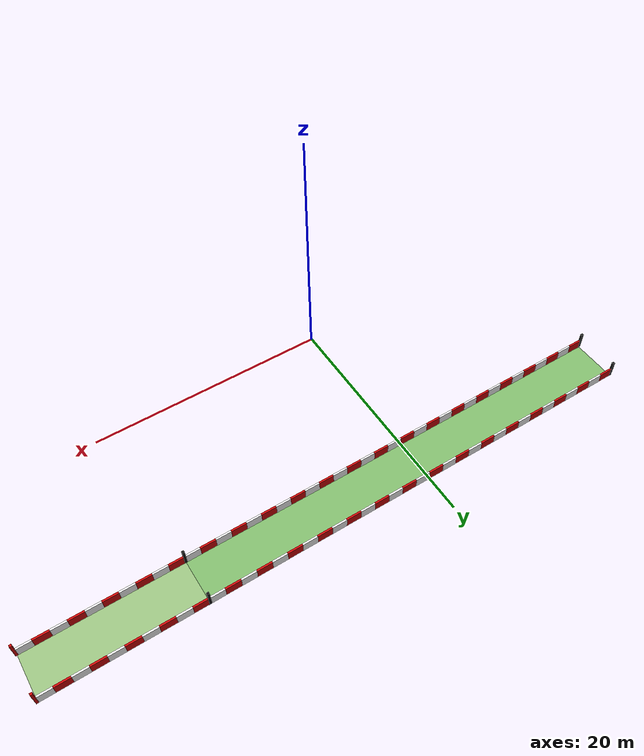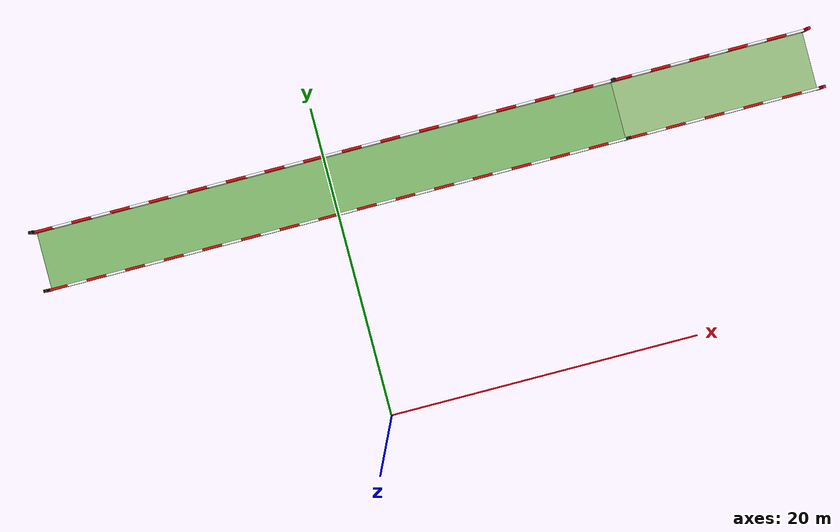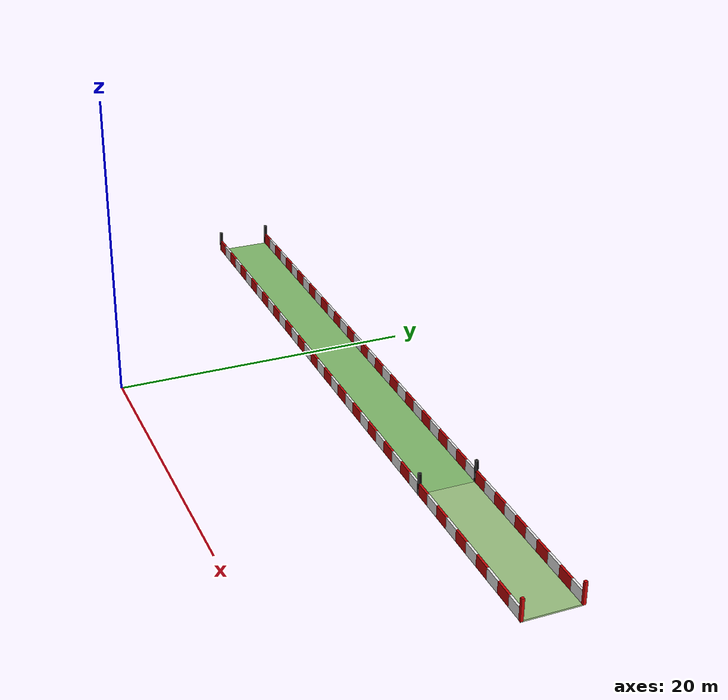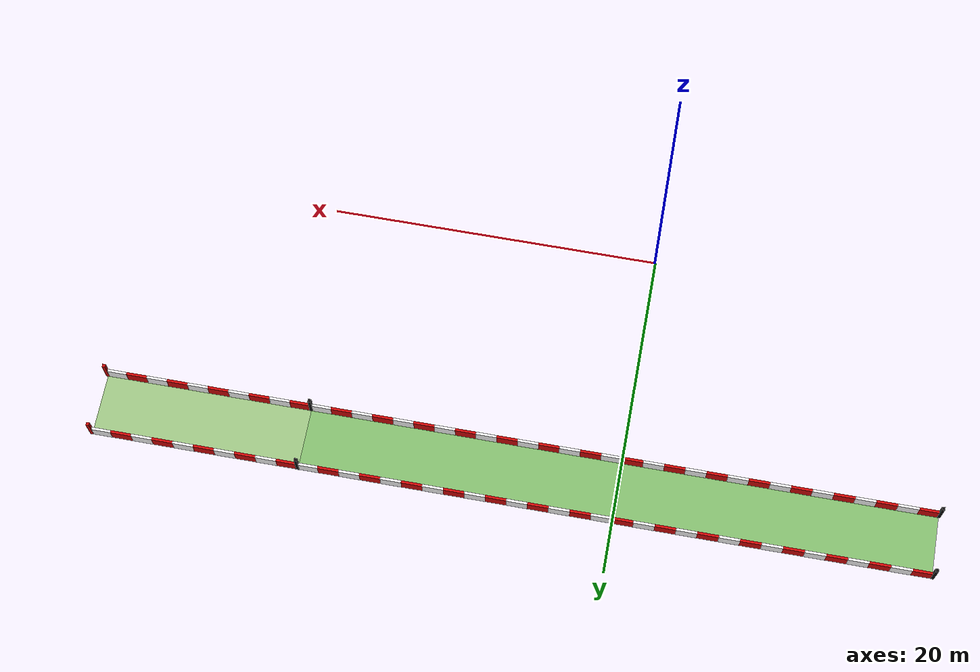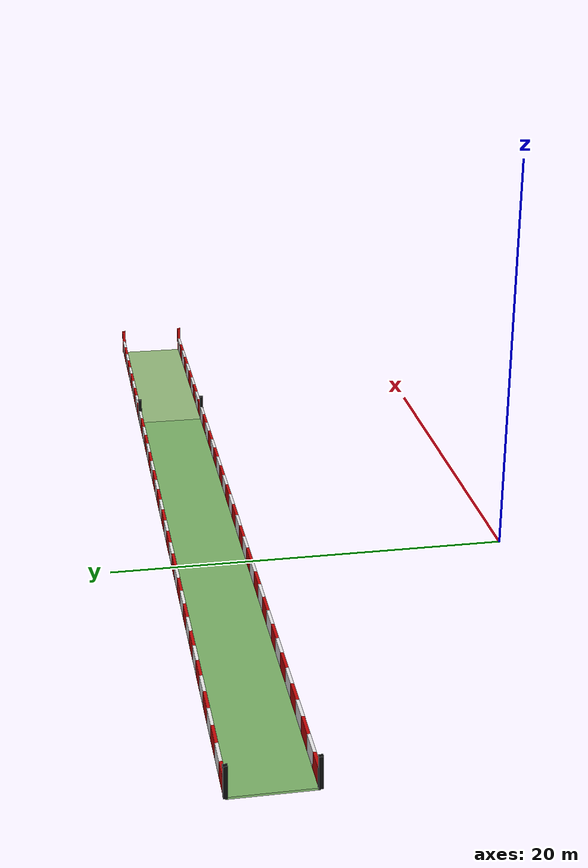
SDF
<sdf version="1.6">
 <world name="evrenos_teknofest_2026">
  <include><uri>model://sun</uri></include>
  <model name="acceleration_course">
   <static>true</static>
   <link name="accel_30m">
    <pose>0.000000 15.000000 -0.050000 0.000000 0.000000 0.000000</pose>
    <collision name="accel_30m_collision">
     <geometry><box><size>37.500000 3.750000 0.100000</size></box></geometry>
    </collision>
    <visual name="accel_30m_visual">
     <geometry><box><size>37.500000 3.750000 0.100000</size></box></geometry>
     <material><ambient>0.5 0.72 0.42 1</ambient><diffuse>0.5 0.72 0.42 1</diffuse></material>
    </visual>
   </link>
   <link name="accel_stop_10m">
    <pose>25.000000 15.000000 -0.050000 0.000000 0.000000 0.000000</pose>
    <collision name="accel_stop_10m_collision">
     <geometry><box><size>12.500000 3.750000 0.100000</size></box></geometry>
    </collision>
    <visual name="accel_stop_10m_visual">
     <geometry><box><size>12.500000 3.750000 0.100000</size></box></geometry>
     <material><ambient>0.6 0.75 0.5 1</ambient><diffuse>0.6 0.75 0.5 1</diffuse></material>
    </visual>
   </link>
   <link name="accel_bar_-1_0">
    <pose>-18.125000 13.125000 0.400000 0.000000 0.000000 0.000000</pose>
    <collision name="accel_bar_-1_0_collision">
     <geometry><box><size>1.250000 0.150000 0.800000</size></box></geometry>
    </collision>
    <visual name="accel_bar_-1_0_visual">
     <geometry><box><size>1.250000 0.150000 0.800000</size></box></geometry>
     <material><ambient>0.8 0.03 0.03 1</ambient><diffuse>0.8 0.03 0.03 1</diffuse></material>
    </visual>
   </link>
   <link name="accel_bar_-1_1">
    <pose>-16.875000 13.125000 0.400000 0.000000 0.000000 0.000000</pose>
    <collision name="accel_bar_-1_1_collision">
     <geometry><box><size>1.250000 0.150000 0.800000</size></box></geometry>
    </collision>
    <visual name="accel_bar_-1_1_visual">
     <geometry><box><size>1.250000 0.150000 0.800000</size></box></geometry>
     <material><ambient>0.95 0.95 0.95 1</ambient><diffuse>0.95 0.95 0.95 1</diffuse></material>
    </visual>
   </link>
   <link name="accel_bar_-1_2">
    <pose>-15.625000 13.125000 0.400000 0.000000 0.000000 0.000000</pose>
    <collision name="accel_bar_-1_2_collision">
     <geometry><box><size>1.250000 0.150000 0.800000</size></box></geometry>
    </collision>
    <visual name="accel_bar_-1_2_visual">
     <geometry><box><size>1.250000 0.150000 0.800000</size></box></geometry>
     <material><ambient>0.8 0.03 0.03 1</ambient><diffuse>0.8 0.03 0.03 1</diffuse></material>
    </visual>
   </link>
   <link name="accel_bar_-1_3">
    <pose>-14.375000 13.125000 0.400000 0.000000 0.000000 0.000000</pose>
    <collision name="accel_bar_-1_3_collision">
     <geometry><box><size>1.250000 0.150000 0.800000</size></box></geometry>
    </collision>
    <visual name="accel_bar_-1_3_visual">
     <geometry><box><size>1.250000 0.150000 0.800000</size></box></geometry>
     <material><ambient>0.95 0.95 0.95 1</ambient><diffuse>0.95 0.95 0.95 1</diffuse></material>
    </visual>
   </link>
   <link name="accel_bar_-1_4">
    <pose>-13.125000 13.125000 0.400000 0.000000 0.000000 0.000000</pose>
    <collision name="accel_bar_-1_4_collision">
     <geometry><box><size>1.250000 0.150000 0.800000</size></box></geometry>
    </collision>
    <visual name="accel_bar_-1_4_visual">
     <geometry><box><size>1.250000 0.150000 0.800000</size></box></geometry>
     <material><ambient>0.8 0.03 0.03 1</ambient><diffuse>0.8 0.03 0.03 1</diffuse></material>
    </visual>
   </link>
   <link name="accel_bar_-1_5">
    <pose>-11.875000 13.125000 0.400000 0.000000 0.000000 0.000000</pose>
    <collision name="accel_bar_-1_5_collision">
     <geometry><box><size>1.250000 0.150000 0.800000</size></box></geometry>
    </collision>
    <visual name="accel_bar_-1_5_visual">
     <geometry><box><size>1.250000 0.150000 0.800000</size></box></geometry>
     <material><ambient>0.95 0.95 0.95 1</ambient><diffuse>0.95 0.95 0.95 1</diffuse></material>
    </visual>
   </link>
   <link name="accel_bar_-1_6">
    <pose>-10.625000 13.125000 0.400000 0.000000 0.000000 0.000000</pose>
    <collision name="accel_bar_-1_6_collision">
     <geometry><box><size>1.250000 0.150000 0.800000</size></box></geometry>
    </collision>
    <visual name="accel_bar_-1_6_visual">
     <geometry><box><size>1.250000 0.150000 0.800000</size></box></geometry>
     <material><ambient>0.8 0.03 0.03 1</ambient><diffuse>0.8 0.03 0.03 1</diffuse></material>
    </visual>
   </link>
   <link name="accel_bar_-1_7">
    <pose>-9.375000 13.125000 0.400000 0.000000 0.000000 0.000000</pose>
    <collision name="accel_bar_-1_7_collision">
     <geometry><box><size>1.250000 0.150000 0.800000</size></box></geometry>
    </collision>
    <visual name="accel_bar_-1_7_visual">
     <geometry><box><size>1.250000 0.150000 0.800000</size></box></geometry>
     <material><ambient>0.95 0.95 0.95 1</ambient><diffuse>0.95 0.95 0.95 1</diffuse></material>
    </visual>
   </link>
   <link name="accel_bar_-1_8">
    <pose>-8.125000 13.125000 0.400000 0.000000 0.000000 0.000000</pose>
    <collision name="accel_bar_-1_8_collision">
     <geometry><box><size>1.250000 0.150000 0.800000</size></box></geometry>
    </collision>
    <visual name="accel_bar_-1_8_visual">
     <geometry><box><size>1.250000 0.150000 0.800000</size></box></geometry>
     <material><ambient>0.8 0.03 0.03 1</ambient><diffuse>0.8 0.03 0.03 1</diffuse></material>
    </visual>
   </link>
   <link name="accel_bar_-1_9">
    <pose>-6.875000 13.125000 0.400000 0.000000 0.000000 0.000000</pose>
    <collision name="accel_bar_-1_9_collision">
     <geometry><box><size>1.250000 0.150000 0.800000</size></box></geometry>
    </collision>
    <visual name="accel_bar_-1_9_visual">
     <geometry><box><size>1.250000 0.150000 0.800000</size></box></geometry>
     <material><ambient>0.95 0.95 0.95 1</ambient><diffuse>0.95 0.95 0.95 1</diffuse></material>
    </visual>
   </link>
   <link name="accel_bar_-1_10">
    <pose>-5.625000 13.125000 0.400000 0.000000 0.000000 0.000000</pose>
    <collision name="accel_bar_-1_10_collision">
     <geometry><box><size>1.250000 0.150000 0.800000</size></box></geometry>
    </collision>
    <visual name="accel_bar_-1_10_visual">
     <geometry><box><size>1.250000 0.150000 0.800000</size></box></geometry>
     <material><ambient>0.8 0.03 0.03 1</ambient><diffuse>0.8 0.03 0.03 1</diffuse></material>
    </visual>
   </link>
   <link name="accel_bar_-1_11">
    <pose>-4.375000 13.125000 0.400000 0.000000 0.000000 0.000000</pose>
    <collision name="accel_bar_-1_11_collision">
     <geometry><box><size>1.250000 0.150000 0.800000</size></box></geometry>
    </collision>
    <visual name="accel_bar_-1_11_visual">
     <geometry><box><size>1.250000 0.150000 0.800000</size></box></geometry>
     <material><ambient>0.95 0.95 0.95 1</ambient><diffuse>0.95 0.95 0.95 1</diffuse></material>
    </visual>
   </link>
   <link name="accel_bar_-1_12">
    <pose>-3.125000 13.125000 0.400000 0.000000 0.000000 0.000000</pose>
    <collision name="accel_bar_-1_12_collision">
     <geometry><box><size>1.250000 0.150000 0.800000</size></box></geometry>
    </collision>
    <visual name="accel_bar_-1_12_visual">
     <geometry><box><size>1.250000 0.150000 0.800000</size></box></geometry>
     <material><ambient>0.8 0.03 0.03 1</ambient><diffuse>0.8 0.03 0.03 1</diffuse></material>
    </visual>
   </link>
   <link name="accel_bar_-1_13">
    <pose>-1.875000 13.125000 0.400000 0.000000 0.000000 0.000000</pose>
    <collision name="accel_bar_-1_13_collision">
     <geometry><box><size>1.250000 0.150000 0.800000</size></box></geometry>
    </collision>
    <visual name="accel_bar_-1_13_visual">
     <geometry><box><size>1.250000 0.150000 0.800000</size></box></geometry>
     <material><ambient>0.95 0.95 0.95 1</ambient><diffuse>0.95 0.95 0.95 1</diffuse></material>
    </visual>
   </link>
   <link name="accel_bar_-1_14">
    <pose>-0.625000 13.125000 0.400000 0.000000 0.000000 0.000000</pose>
    <collision name="accel_bar_-1_14_collision">
     <geometry><box><size>1.250000 0.150000 0.800000</size></box></geometry>
    </collision>
    <visual name="accel_bar_-1_14_visual">
     <geometry><box><size>1.250000 0.150000 0.800000</size></box></geometry>
     <material><ambient>0.8 0.03 0.03 1</ambient><diffuse>0.8 0.03 0.03 1</diffuse></material>
    </visual>
   </link>
   <link name="accel_bar_-1_15">
    <pose>0.625000 13.125000 0.400000 0.000000 0.000000 0.000000</pose>
    <collision name="accel_bar_-1_15_collision">
     <geometry><box><size>1.250000 0.150000 0.800000</size></box></geometry>
    </collision>
    <visual name="accel_bar_-1_15_visual">
     <geometry><box><size>1.250000 0.150000 0.800000</size></box></geometry>
     <material><ambient>0.95 0.95 0.95 1</ambient><diffuse>0.95 0.95 0.95 1</diffuse></material>
    </visual>
   </link>
   <link name="accel_bar_-1_16">
    <pose>1.875000 13.125000 0.400000 0.000000 0.000000 0.000000</pose>
    <collision name="accel_bar_-1_16_collision">
     <geometry><box><size>1.250000 0.150000 0.800000</size></box></geometry>
    </collision>
    <visual name="accel_bar_-1_16_visual">
     <geometry><box><size>1.250000 0.150000 0.800000</size></box></geometry>
     <material><ambient>0.8 0.03 0.03 1</ambient><diffuse>0.8 0.03 0.03 1</diffuse></material>
    </visual>
   </link>
   <link name="accel_bar_-1_17">
    <pose>3.125000 13.125000 0.400000 0.000000 0.000000 0.000000</pose>
    <collision name="accel_bar_-1_17_collision">
     <geometry><box><size>1.250000 0.150000 0.800000</size></box></geometry>
    </collision>
    <visual name="accel_bar_-1_17_visual">
     <geometry><box><size>1.250000 0.150000 0.800000</size></box></geometry>
     <material><ambient>0.95 0.95 0.95 1</ambient><diffuse>0.95 0.95 0.95 1</diffuse></material>
    </visual>
   </link>
   <link name="accel_bar_-1_18">
    <pose>4.375000 13.125000 0.400000 0.000000 0.000000 0.000000</pose>
    <collision name="accel_bar_-1_18_collision">
     <geometry><box><size>1.250000 0.150000 0.800000</size></box></geometry>
    </collision>
    <visual name="accel_bar_-1_18_visual">
     <geometry><box><size>1.250000 0.150000 0.800000</size></box></geometry>
     <material><ambient>0.8 0.03 0.03 1</ambient><diffuse>0.8 0.03 0.03 1</diffuse></material>
    </visual>
   </link>
   <link name="accel_bar_-1_19">
    <pose>5.625000 13.125000 0.400000 0.000000 0.000000 0.000000</pose>
    <collision name="accel_bar_-1_19_collision">
     <geometry><box><size>1.250000 0.150000 0.800000</size></box></geometry>
    </collision>
    <visual name="accel_bar_-1_19_visual">
     <geometry><box><size>1.250000 0.150000 0.800000</size></box></geometry>
     <material><ambient>0.95 0.95 0.95 1</ambient><diffuse>0.95 0.95 0.95 1</diffuse></material>
    </visual>
   </link>
   <link name="accel_bar_-1_20">
    <pose>6.875000 13.125000 0.400000 0.000000 0.000000 0.000000</pose>
    <collision name="accel_bar_-1_20_collision">
     <geometry><box><size>1.250000 0.150000 0.800000</size></box></geometry>
    </collision>
    <visual name="accel_bar_-1_20_visual">
     <geometry><box><size>1.250000 0.150000 0.800000</size></box></geometry>
     <material><ambient>0.8 0.03 0.03 1</ambient><diffuse>0.8 0.03 0.03 1</diffuse></material>
    </visual>
   </link>
   <link name="accel_bar_-1_21">
    <pose>8.125000 13.125000 0.400000 0.000000 0.000000 0.000000</pose>
    <collision name="accel_bar_-1_21_collision">
     <geometry><box><size>1.250000 0.150000 0.800000</size></box></geometry>
    </collision>
    <visual name="accel_bar_-1_21_visual">
     <geometry><box><size>1.250000 0.150000 0.800000</size></box></geometry>
     <material><ambient>0.95 0.95 0.95 1</ambient><diffuse>0.95 0.95 0.95 1</diffuse></material>
    </visual>
   </link>
   <link name="accel_bar_-1_22">
    <pose>9.375000 13.125000 0.400000 0.000000 0.000000 0.000000</pose>
    <collision name="accel_bar_-1_22_collision">
     <geometry><box><size>1.250000 0.150000 0.800000</size></box></geometry>
    </collision>
    <visual name="accel_bar_-1_22_visual">
     <geometry><box><size>1.250000 0.150000 0.800000</size></box></geometry>
     <material><ambient>0.8 0.03 0.03 1</ambient><diffuse>0.8 0.03 0.03 1</diffuse></material>
    </visual>
   </link>
   <link name="accel_bar_-1_23">
    <pose>10.625000 13.125000 0.400000 0.000000 0.000000 0.000000</pose>
    <collision name="accel_bar_-1_23_collision">
     <geometry><box><size>1.250000 0.150000 0.800000</size></box></geometry>
    </collision>
    <visual name="accel_bar_-1_23_visual">
     <geometry><box><size>1.250000 0.150000 0.800000</size></box></geometry>
     <material><ambient>0.95 0.95 0.95 1</ambient><diffuse>0.95 0.95 0.95 1</diffuse></material>
    </visual>
   </link>
   <link name="accel_bar_-1_24">
    <pose>11.875000 13.125000 0.400000 0.000000 0.000000 0.000000</pose>
    <collision name="accel_bar_-1_24_collision">
     <geometry><box><size>1.250000 0.150000 0.800000</size></box></geometry>
    </collision>
    <visual name="accel_bar_-1_24_visual">
     <geometry><box><size>1.250000 0.150000 0.800000</size></box></geometry>
     <material><ambient>0.8 0.03 0.03 1</ambient><diffuse>0.8 0.03 0.03 1</diffuse></material>
    </visual>
   </link>
   <link name="accel_bar_-1_25">
    <pose>13.125000 13.125000 0.400000 0.000000 0.000000 0.000000</pose>
    <collision name="accel_bar_-1_25_collision">
     <geometry><box><size>1.250000 0.150000 0.800000</size></box></geometry>
    </collision>
    <visual name="accel_bar_-1_25_visual">
     <geometry><box><size>1.250000 0.150000 0.800000</size></box></geometry>
     <material><ambient>0.95 0.95 0.95 1</ambient><diffuse>0.95 0.95 0.95 1</diffuse></material>
    </visual>
   </link>
   <link name="accel_bar_-1_26">
    <pose>14.375000 13.125000 0.400000 0.000000 0.000000 0.000000</pose>
    <collision name="accel_bar_-1_26_collision">
     <geometry><box><size>1.250000 0.150000 0.800000</size></box></geometry>
    </collision>
    <visual name="accel_bar_-1_26_visual">
     <geometry><box><size>1.250000 0.150000 0.800000</size></box></geometry>
     <material><ambient>0.8 0.03 0.03 1</ambient><diffuse>0.8 0.03 0.03 1</diffuse></material>
    </visual>
   </link>
   <link name="accel_bar_-1_27">
    <pose>15.625000 13.125000 0.400000 0.000000 0.000000 0.000000</pose>
    <collision name="accel_bar_-1_27_collision">
     <geometry><box><size>1.250000 0.150000 0.800000</size></box></geometry>
    </collision>
    <visual name="accel_bar_-1_27_visual">
     <geometry><box><size>1.250000 0.150000 0.800000</size></box></geometry>
     <material><ambient>0.95 0.95 0.95 1</ambient><diffuse>0.95 0.95 0.95 1</diffuse></material>
    </visual>
   </link>
   <link name="accel_bar_-1_28">
    <pose>16.875000 13.125000 0.400000 0.000000 0.000000 0.000000</pose>
    <collision name="accel_bar_-1_28_collision">
     <geometry><box><size>1.250000 0.150000 0.800000</size></box></geometry>
    </collision>
    <visual name="accel_bar_-1_28_visual">
     <geometry><box><size>1.250000 0.150000 0.800000</size></box></geometry>
     <material><ambient>0.8 0.03 0.03 1</ambient><diffuse>0.8 0.03 0.03 1</diffuse></material>
    </visual>
   </link>
   <link name="accel_bar_-1_29">
    <pose>18.125000 13.125000 0.400000 0.000000 0.000000 0.000000</pose>
    <collision name="accel_bar_-1_29_collision">
     <geometry><box><size>1.250000 0.150000 0.800000</size></box></geometry>
    </collision>
    <visual name="accel_bar_-1_29_visual">
     <geometry><box><size>1.250000 0.150000 0.800000</size></box></geometry>
     <material><ambient>0.95 0.95 0.95 1</ambient><diffuse>0.95 0.95 0.95 1</diffuse></material>
    </visual>
   </link>
   <link name="accel_bar_-1_30">
    <pose>19.375000 13.125000 0.400000 0.000000 0.000000 0.000000</pose>
    <collision name="accel_bar_-1_30_collision">
     <geometry><box><size>1.250000 0.150000 0.800000</size></box></geometry>
    </collision>
    <visual name="accel_bar_-1_30_visual">
     <geometry><box><size>1.250000 0.150000 0.800000</size></box></geometry>
     <material><ambient>0.8 0.03 0.03 1</ambient><diffuse>0.8 0.03 0.03 1</diffuse></material>
    </visual>
   </link>
   <link name="accel_bar_-1_31">
    <pose>20.625000 13.125000 0.400000 0.000000 0.000000 0.000000</pose>
    <collision name="accel_bar_-1_31_collision">
     <geometry><box><size>1.250000 0.150000 0.800000</size></box></geometry>
    </collision>
    <visual name="accel_bar_-1_31_visual">
     <geometry><box><size>1.250000 0.150000 0.800000</size></box></geometry>
     <material><ambient>0.95 0.95 0.95 1</ambient><diffuse>0.95 0.95 0.95 1</diffuse></material>
    </visual>
   </link>
   <link name="accel_bar_-1_32">
    <pose>21.875000 13.125000 0.400000 0.000000 0.000000 0.000000</pose>
    <collision name="accel_bar_-1_32_collision">
     <geometry><box><size>1.250000 0.150000 0.800000</size></box></geometry>
    </collision>
    <visual name="accel_bar_-1_32_visual">
     <geometry><box><size>1.250000 0.150000 0.800000</size></box></geometry>
     <material><ambient>0.8 0.03 0.03 1</ambient><diffuse>0.8 0.03 0.03 1</diffuse></material>
    </visual>
   </link>
   <link name="accel_bar_-1_33">
    <pose>23.125000 13.125000 0.400000 0.000000 0.000000 0.000000</pose>
    <collision name="accel_bar_-1_33_collision">
     <geometry><box><size>1.250000 0.150000 0.800000</size></box></geometry>
    </collision>
    <visual name="accel_bar_-1_33_visual">
     <geometry><box><size>1.250000 0.150000 0.800000</size></box></geometry>
     <material><ambient>0.95 0.95 0.95 1</ambient><diffuse>0.95 0.95 0.95 1</diffuse></material>
    </visual>
   </link>
   <link name="accel_bar_-1_34">
    <pose>24.375000 13.125000 0.400000 0.000000 0.000000 0.000000</pose>
    <collision name="accel_bar_-1_34_collision">
     <geometry><box><size>1.250000 0.150000 0.800000</size></box></geometry>
    </collision>
    <visual name="accel_bar_-1_34_visual">
     <geometry><box><size>1.250000 0.150000 0.800000</size></box></geometry>
     <material><ambient>0.8 0.03 0.03 1</ambient><diffuse>0.8 0.03 0.03 1</diffuse></material>
    </visual>
   </link>
   <link name="accel_bar_-1_35">
    <pose>25.625000 13.125000 0.400000 0.000000 0.000000 0.000000</pose>
    <collision name="accel_bar_-1_35_collision">
     <geometry><box><size>1.250000 0.150000 0.800000</size></box></geometry>
    </collision>
    <visual name="accel_bar_-1_35_visual">
     <geometry><box><size>1.250000 0.150000 0.800000</size></box></geometry>
     <material><ambient>0.95 0.95 0.95 1</ambient><diffuse>0.95 0.95 0.95 1</diffuse></material>
    </visual>
   </link>
   <link name="accel_bar_-1_36">
    <pose>26.875000 13.125000 0.400000 0.000000 0.000000 0.000000</pose>
    <collision name="accel_bar_-1_36_collision">
     <geometry><box><size>1.250000 0.150000 0.800000</size></box></geometry>
    </collision>
    <visual name="accel_bar_-1_36_visual">
     <geometry><box><size>1.250000 0.150000 0.800000</size></box></geometry>
     <material><ambient>0.8 0.03 0.03 1</ambient><diffuse>0.8 0.03 0.03 1</diffuse></material>
    </visual>
   </link>
   <link name="accel_bar_-1_37">
    <pose>28.125000 13.125000 0.400000 0.000000 0.000000 0.000000</pose>
    <collision name="accel_bar_-1_37_collision">
     <geometry><box><size>1.250000 0.150000 0.800000</size></box></geometry>
    </collision>
    <visual name="accel_bar_-1_37_visual">
     <geometry><box><size>1.250000 0.150000 0.800000</size></box></geometry>
     <material><ambient>0.95 0.95 0.95 1</ambient><diffuse>0.95 0.95 0.95 1</diffuse></material>
    </visual>
   </link>
   <link name="accel_bar_-1_38">
    <pose>29.375000 13.125000 0.400000 0.000000 0.000000 0.000000</pose>
    <collision name="accel_bar_-1_38_collision">
     <geometry><box><size>1.250000 0.150000 0.800000</size></box></geometry>
    </collision>
    <visual name="accel_bar_-1_38_visual">
     <geometry><box><size>1.250000 0.150000 0.800000</size></box></geometry>
     <material><ambient>0.8 0.03 0.03 1</ambient><diffuse>0.8 0.03 0.03 1</diffuse></material>
    </visual>
   </link>
   <link name="accel_bar_-1_39">
    <pose>30.625000 13.125000 0.400000 0.000000 0.000000 0.000000</pose>
    <collision name="accel_bar_-1_39_collision">
     <geometry><box><size>1.250000 0.150000 0.800000</size></box></geometry>
    </collision>
    <visual name="accel_bar_-1_39_visual">
     <geometry><box><size>1.250000 0.150000 0.800000</size></box></geometry>
     <material><ambient>0.95 0.95 0.95 1</ambient><diffuse>0.95 0.95 0.95 1</diffuse></material>
    </visual>
   </link>
   <link name="accel_bar_1_0">
    <pose>-18.125000 16.875000 0.400000 0.000000 0.000000 0.000000</pose>
    <collision name="accel_bar_1_0_collision">
     <geometry><box><size>1.250000 0.150000 0.800000</size></box></geometry>
    </collision>
    <visual name="accel_bar_1_0_visual">
     <geometry><box><size>1.250000 0.150000 0.800000</size></box></geometry>
     <material><ambient>0.8 0.03 0.03 1</ambient><diffuse>0.8 0.03 0.03 1</diffuse></material>
    </visual>
   </link>
   <link name="accel_bar_1_1">
    <pose>-16.875000 16.875000 0.400000 0.000000 0.000000 0.000000</pose>
    <collision name="accel_bar_1_1_collision">
     <geometry><box><size>1.250000 0.150000 0.800000</size></box></geometry>
    </collision>
    <visual name="accel_bar_1_1_visual">
     <geometry><box><size>1.250000 0.150000 0.800000</size></box></geometry>
     <material><ambient>0.95 0.95 0.95 1</ambient><diffuse>0.95 0.95 0.95 1</diffuse></material>
    </visual>
   </link>
   <link name="accel_bar_1_2">
    <pose>-15.625000 16.875000 0.400000 0.000000 0.000000 0.000000</pose>
    <collision name="accel_bar_1_2_collision">
     <geometry><box><size>1.250000 0.150000 0.800000</size></box></geometry>
    </collision>
    <visual name="accel_bar_1_2_visual">
     <geometry><box><size>1.250000 0.150000 0.800000</size></box></geometry>
     <material><ambient>0.8 0.03 0.03 1</ambient><diffuse>0.8 0.03 0.03 1</diffuse></material>
    </visual>
   </link>
   <link name="accel_bar_1_3">
    <pose>-14.375000 16.875000 0.400000 0.000000 0.000000 0.000000</pose>
    <collision name="accel_bar_1_3_collision">
     <geometry><box><size>1.250000 0.150000 0.800000</size></box></geometry>
    </collision>
    <visual name="accel_bar_1_3_visual">
     <geometry><box><size>1.250000 0.150000 0.800000</size></box></geometry>
     <material><ambient>0.95 0.95 0.95 1</ambient><diffuse>0.95 0.95 0.95 1</diffuse></material>
    </visual>
   </link>
   <link name="accel_bar_1_4">
    <pose>-13.125000 16.875000 0.400000 0.000000 0.000000 0.000000</pose>
    <collision name="accel_bar_1_4_collision">
     <geometry><box><size>1.250000 0.150000 0.800000</size></box></geometry>
    </collision>
    <visual name="accel_bar_1_4_visual">
     <geometry><box><size>1.250000 0.150000 0.800000</size></box></geometry>
     <material><ambient>0.8 0.03 0.03 1</ambient><diffuse>0.8 0.03 0.03 1</diffuse></material>
    </visual>
   </link>
   <link name="accel_bar_1_5">
    <pose>-11.875000 16.875000 0.400000 0.000000 0.000000 0.000000</pose>
    <collision name="accel_bar_1_5_collision">
     <geometry><box><size>1.250000 0.150000 0.800000</size></box></geometry>
    </collision>
    <visual name="accel_bar_1_5_visual">
     <geometry><box><size>1.250000 0.150000 0.800000</size></box></geometry>
     <material><ambient>0.95 0.95 0.95 1</ambient><diffuse>0.95 0.95 0.95 1</diffuse></material>
    </visual>
   </link>
   <link name="accel_bar_1_6">
    <pose>-10.625000 16.875000 0.400000 0.000000 0.000000 0.000000</pose>
    <collision name="accel_bar_1_6_collision">
     <geometry><box><size>1.250000 0.150000 0.800000</size></box></geometry>
    </collision>
    <visual name="accel_bar_1_6_visual">
     <geometry><box><size>1.250000 0.150000 0.800000</size></box></geometry>
     <material><ambient>0.8 0.03 0.03 1</ambient><diffuse>0.8 0.03 0.03 1</diffuse></material>
    </visual>
   </link>
   <link name="accel_bar_1_7">
    <pose>-9.375000 16.875000 0.400000 0.000000 0.000000 0.000000</pose>
    <collision name="accel_bar_1_7_collision">
     <geometry><box><size>1.250000 0.150000 0.800000</size></box></geometry>
    </collision>
    <visual name="accel_bar_1_7_visual">
     <geometry><box><size>1.250000 0.150000 0.800000</size></box></geometry>
     <material><ambient>0.95 0.95 0.95 1</ambient><diffuse>0.95 0.95 0.95 1</diffuse></material>
    </visual>
   </link>
   <link name="accel_bar_1_8">
    <pose>-8.125000 16.875000 0.400000 0.000000 0.000000 0.000000</pose>
    <collision name="accel_bar_1_8_collision">
     <geometry><box><size>1.250000 0.150000 0.800000</size></box></geometry>
    </collision>
    <visual name="accel_bar_1_8_visual">
     <geometry><box><size>1.250000 0.150000 0.800000</size></box></geometry>
     <material><ambient>0.8 0.03 0.03 1</ambient><diffuse>0.8 0.03 0.03 1</diffuse></material>
    </visual>
   </link>
   <link name="accel_bar_1_9">
    <pose>-6.875000 16.875000 0.400000 0.000000 0.000000 0.000000</pose>
    <collision name="accel_bar_1_9_collision">
     <geometry><box><size>1.250000 0.150000 0.800000</size></box></geometry>
    </collision>
    <visual name="accel_bar_1_9_visual">
     <geometry><box><size>1.250000 0.150000 0.800000</size></box></geometry>
     <material><ambient>0.95 0.95 0.95 1</ambient><diffuse>0.95 0.95 0.95 1</diffuse></material>
    </visual>
   </link>
   <link name="accel_bar_1_10">
    <pose>-5.625000 16.875000 0.400000 0.000000 0.000000 0.000000</pose>
    <collision name="accel_bar_1_10_collision">
     <geometry><box><size>1.250000 0.150000 0.800000</size></box></geometry>
    </collision>
    <visual name="accel_bar_1_10_visual">
     <geometry><box><size>1.250000 0.150000 0.800000</size></box></geometry>
     <material><ambient>0.8 0.03 0.03 1</ambient><diffuse>0.8 0.03 0.03 1</diffuse></material>
    </visual>
   </link>
   <link name="accel_bar_1_11">
    <pose>-4.375000 16.875000 0.400000 0.000000 0.000000 0.000000</pose>
    <collision name="accel_bar_1_11_collision">
     <geometry><box><size>1.250000 0.150000 0.800000</size></box></geometry>
    </collision>
    <visual name="accel_bar_1_11_visual">
     <geometry><box><size>1.250000 0.150000 0.800000</size></box></geometry>
     <material><ambient>0.95 0.95 0.95 1</ambient><diffuse>0.95 0.95 0.95 1</diffuse></material>
    </visual>
   </link>
   <link name="accel_bar_1_12">
    <pose>-3.125000 16.875000 0.400000 0.000000 0.000000 0.000000</pose>
    <collision name="accel_bar_1_12_collision">
     <geometry><box><size>1.250000 0.150000 0.800000</size></box></geometry>
    </collision>
    <visual name="accel_bar_1_12_visual">
     <geometry><box><size>1.250000 0.150000 0.800000</size></box></geometry>
     <material><ambient>0.8 0.03 0.03 1</ambient><diffuse>0.8 0.03 0.03 1</diffuse></material>
    </visual>
   </link>
   <link name="accel_bar_1_13">
    <pose>-1.875000 16.875000 0.400000 0.000000 0.000000 0.000000</pose>
    <collision name="accel_bar_1_13_collision">
     <geometry><box><size>1.250000 0.150000 0.800000</size></box></geometry>
    </collision>
    <visual name="accel_bar_1_13_visual">
     <geometry><box><size>1.250000 0.150000 0.800000</size></box></geometry>
     <material><ambient>0.95 0.95 0.95 1</ambient><diffuse>0.95 0.95 0.95 1</diffuse></material>
    </visual>
   </link>
   <link name="accel_bar_1_14">
    <pose>-0.625000 16.875000 0.400000 0.000000 0.000000 0.000000</pose>
    <collision name="accel_bar_1_14_collision">
     <geometry><box><size>1.250000 0.150000 0.800000</size></box></geometry>
    </collision>
    <visual name="accel_bar_1_14_visual">
     <geometry><box><size>1.250000 0.150000 0.800000</size></box></geometry>
     <material><ambient>0.8 0.03 0.03 1</ambient><diffuse>0.8 0.03 0.03 1</diffuse></material>
    </visual>
   </link>
   <link name="accel_bar_1_15">
    <pose>0.625000 16.875000 0.400000 0.000000 0.000000 0.000000</pose>
    <collision name="accel_bar_1_15_collision">
     <geometry><box><size>1.250000 0.150000 0.800000</size></box></geometry>
    </collision>
    <visual name="accel_bar_1_15_visual">
     <geometry><box><size>1.250000 0.150000 0.800000</size></box></geometry>
     <material><ambient>0.95 0.95 0.95 1</ambient><diffuse>0.95 0.95 0.95 1</diffuse></material>
    </visual>
   </link>
   <link name="accel_bar_1_16">
    <pose>1.875000 16.875000 0.400000 0.000000 0.000000 0.000000</pose>
    <collision name="accel_bar_1_16_collision">
     <geometry><box><size>1.250000 0.150000 0.800000</size></box></geometry>
    </collision>
    <visual name="accel_bar_1_16_visual">
     <geometry><box><size>1.250000 0.150000 0.800000</size></box></geometry>
     <material><ambient>0.8 0.03 0.03 1</ambient><diffuse>0.8 0.03 0.03 1</diffuse></material>
    </visual>
   </link>
   <link name="accel_bar_1_17">
    <pose>3.125000 16.875000 0.400000 0.000000 0.000000 0.000000</pose>
    <collision name="accel_bar_1_17_collision">
     <geometry><box><size>1.250000 0.150000 0.800000</size></box></geometry>
    </collision>
    <visual name="accel_bar_1_17_visual">
     <geometry><box><size>1.250000 0.150000 0.800000</size></box></geometry>
     <material><ambient>0.95 0.95 0.95 1</ambient><diffuse>0.95 0.95 0.95 1</diffuse></material>
    </visual>
   </link>
   <link name="accel_bar_1_18">
    <pose>4.375000 16.875000 0.400000 0.000000 0.000000 0.000000</pose>
    <collision name="accel_bar_1_18_collision">
     <geometry><box><size>1.250000 0.150000 0.800000</size></box></geometry>
    </collision>
    <visual name="accel_bar_1_18_visual">
     <geometry><box><size>1.250000 0.150000 0.800000</size></box></geometry>
     <material><ambient>0.8 0.03 0.03 1</ambient><diffuse>0.8 0.03 0.03 1</diffuse></material>
    </visual>
   </link>
   <link name="accel_bar_1_19">
    <pose>5.625000 16.875000 0.400000 0.000000 0.000000 0.000000</pose>
    <collision name="accel_bar_1_19_collision">
     <geometry><box><size>1.250000 0.150000 0.800000</size></box></geometry>
    </collision>
    <visual name="accel_bar_1_19_visual">
     <geometry><box><size>1.250000 0.150000 0.800000</size></box></geometry>
     <material><ambient>0.95 0.95 0.95 1</ambient><diffuse>0.95 0.95 0.95 1</diffuse></material>
    </visual>
   </link>
   <link name="accel_bar_1_20">
    <pose>6.875000 16.875000 0.400000 0.000000 0.000000 0.000000</pose>
    <collision name="accel_bar_1_20_collision">
     <geometry><box><size>1.250000 0.150000 0.800000</size></box></geometry>
    </collision>
    <visual name="accel_bar_1_20_visual">
     <geometry><box><size>1.250000 0.150000 0.800000</size></box></geometry>
     <material><ambient>0.8 0.03 0.03 1</ambient><diffuse>0.8 0.03 0.03 1</diffuse></material>
    </visual>
   </link>
   <link name="accel_bar_1_21">
    <pose>8.125000 16.875000 0.400000 0.000000 0.000000 0.000000</pose>
    <collision name="accel_bar_1_21_collision">
     <geometry><box><size>1.250000 0.150000 0.800000</size></box></geometry>
    </collision>
    <visual name="accel_bar_1_21_visual">
     <geometry><box><size>1.250000 0.150000 0.800000</size></box></geometry>
     <material><ambient>0.95 0.95 0.95 1</ambient><diffuse>0.95 0.95 0.95 1</diffuse></material>
    </visual>
   </link>
   <link name="accel_bar_1_22">
    <pose>9.375000 16.875000 0.400000 0.000000 0.000000 0.000000</pose>
    <collision name="accel_bar_1_22_collision">
     <geometry><box><size>1.250000 0.150000 0.800000</size></box></geometry>
    </collision>
    <visual name="accel_bar_1_22_visual">
     <geometry><box><size>1.250000 0.150000 0.800000</size></box></geometry>
     <material><ambient>0.8 0.03 0.03 1</ambient><diffuse>0.8 0.03 0.03 1</diffuse></material>
    </visual>
   </link>
   <link name="accel_bar_1_23">
    <pose>10.625000 16.875000 0.400000 0.000000 0.000000 0.000000</pose>
    <collision name="accel_bar_1_23_collision">
     <geometry><box><size>1.250000 0.150000 0.800000</size></box></geometry>
    </collision>
    <visual name="accel_bar_1_23_visual">
     <geometry><box><size>1.250000 0.150000 0.800000</size></box></geometry>
     <material><ambient>0.95 0.95 0.95 1</ambient><diffuse>0.95 0.95 0.95 1</diffuse></material>
    </visual>
   </link>
   <link name="accel_bar_1_24">
    <pose>11.875000 16.875000 0.400000 0.000000 0.000000 0.000000</pose>
    <collision name="accel_bar_1_24_collision">
     <geometry><box><size>1.250000 0.150000 0.800000</size></box></geometry>
    </collision>
    <visual name="accel_bar_1_24_visual">
     <geometry><box><size>1.250000 0.150000 0.800000</size></box></geometry>
     <material><ambient>0.8 0.03 0.03 1</ambient><diffuse>0.8 0.03 0.03 1</diffuse></material>
    </visual>
   </link>
   <link name="accel_bar_1_25">
    <pose>13.125000 16.875000 0.400000 0.000000 0.000000 0.000000</pose>
    <collision name="accel_bar_1_25_collision">
     <geometry><box><size>1.250000 0.150000 0.800000</size></box></geometry>
    </collision>
    <visual name="accel_bar_1_25_visual">
     <geometry><box><size>1.250000 0.150000 0.800000</size></box></geometry>
     <material><ambient>0.95 0.95 0.95 1</ambient><diffuse>0.95 0.95 0.95 1</diffuse></material>
    </visual>
   </link>
   <link name="accel_bar_1_26">
    <pose>14.375000 16.875000 0.400000 0.000000 0.000000 0.000000</pose>
    <collision name="accel_bar_1_26_collision">
     <geometry><box><size>1.250000 0.150000 0.800000</size></box></geometry>
    </collision>
    <visual name="accel_bar_1_26_visual">
     <geometry><box><size>1.250000 0.150000 0.800000</size></box></geometry>
     <material><ambient>0.8 0.03 0.03 1</ambient><diffuse>0.8 0.03 0.03 1</diffuse></material>
    </visual>
   </link>
   <link name="accel_bar_1_27">
    <pose>15.625000 16.875000 0.400000 0.000000 0.000000 0.000000</pose>
    <collision name="accel_bar_1_27_collision">
     <geometry><box><size>1.250000 0.150000 0.800000</size></box></geometry>
    </collision>
    <visual name="accel_bar_1_27_visual">
     <geometry><box><size>1.250000 0.150000 0.800000</size></box></geometry>
     <material><ambient>0.95 0.95 0.95 1</ambient><diffuse>0.95 0.95 0.95 1</diffuse></material>
    </visual>
   </link>
   <link name="accel_bar_1_28">
    <pose>16.875000 16.875000 0.400000 0.000000 0.000000 0.000000</pose>
    <collision name="accel_bar_1_28_collision">
     <geometry><box><size>1.250000 0.150000 0.800000</size></box></geometry>
    </collision>
    <visual name="accel_bar_1_28_visual">
     <geometry><box><size>1.250000 0.150000 0.800000</size></box></geometry>
     <material><ambient>0.8 0.03 0.03 1</ambient><diffuse>0.8 0.03 0.03 1</diffuse></material>
    </visual>
   </link>
   <link name="accel_bar_1_29">
    <pose>18.125000 16.875000 0.400000 0.000000 0.000000 0.000000</pose>
    <collision name="accel_bar_1_29_collision">
     <geometry><box><size>1.250000 0.150000 0.800000</size></box></geometry>
    </collision>
    <visual name="accel_bar_1_29_visual">
     <geometry><box><size>1.250000 0.150000 0.800000</size></box></geometry>
     <material><ambient>0.95 0.95 0.95 1</ambient><diffuse>0.95 0.95 0.95 1</diffuse></material>
    </visual>
   </link>
   <link name="accel_bar_1_30">
    <pose>19.375000 16.875000 0.400000 0.000000 0.000000 0.000000</pose>
    <collision name="accel_bar_1_30_collision">
     <geometry><box><size>1.250000 0.150000 0.800000</size></box></geometry>
    </collision>
    <visual name="accel_bar_1_30_visual">
     <geometry><box><size>1.250000 0.150000 0.800000</size></box></geometry>
     <material><ambient>0.8 0.03 0.03 1</ambient><diffuse>0.8 0.03 0.03 1</diffuse></material>
    </visual>
   </link>
   <link name="accel_bar_1_31">
    <pose>20.625000 16.875000 0.400000 0.000000 0.000000 0.000000</pose>
    <collision name="accel_bar_1_31_collision">
     <geometry><box><size>1.250000 0.150000 0.800000</size></box></geometry>
    </collision>
    <visual name="accel_bar_1_31_visual">
     <geometry><box><size>1.250000 0.150000 0.800000</size></box></geometry>
     <material><ambient>0.95 0.95 0.95 1</ambient><diffuse>0.95 0.95 0.95 1</diffuse></material>
    </visual>
   </link>
   <link name="accel_bar_1_32">
    <pose>21.875000 16.875000 0.400000 0.000000 0.000000 0.000000</pose>
    <collision name="accel_bar_1_32_collision">
     <geometry><box><size>1.250000 0.150000 0.800000</size></box></geometry>
    </collision>
    <visual name="accel_bar_1_32_visual">
     <geometry><box><size>1.250000 0.150000 0.800000</size></box></geometry>
     <material><ambient>0.8 0.03 0.03 1</ambient><diffuse>0.8 0.03 0.03 1</diffuse></material>
    </visual>
   </link>
   <link name="accel_bar_1_33">
    <pose>23.125000 16.875000 0.400000 0.000000 0.000000 0.000000</pose>
    <collision name="accel_bar_1_33_collision">
     <geometry><box><size>1.250000 0.150000 0.800000</size></box></geometry>
    </collision>
    <visual name="accel_bar_1_33_visual">
     <geometry><box><size>1.250000 0.150000 0.800000</size></box></geometry>
     <material><ambient>0.95 0.95 0.95 1</ambient><diffuse>0.95 0.95 0.95 1</diffuse></material>
    </visual>
   </link>
   <link name="accel_bar_1_34">
    <pose>24.375000 16.875000 0.400000 0.000000 0.000000 0.000000</pose>
    <collision name="accel_bar_1_34_collision">
     <geometry><box><size>1.250000 0.150000 0.800000</size></box></geometry>
    </collision>
    <visual name="accel_bar_1_34_visual">
     <geometry><box><size>1.250000 0.150000 0.800000</size></box></geometry>
     <material><ambient>0.8 0.03 0.03 1</ambient><diffuse>0.8 0.03 0.03 1</diffuse></material>
    </visual>
   </link>
   <link name="accel_bar_1_35">
    <pose>25.625000 16.875000 0.400000 0.000000 0.000000 0.000000</pose>
    <collision name="accel_bar_1_35_collision">
     <geometry><box><size>1.250000 0.150000 0.800000</size></box></geometry>
    </collision>
    <visual name="accel_bar_1_35_visual">
     <geometry><box><size>1.250000 0.150000 0.800000</size></box></geometry>
     <material><ambient>0.95 0.95 0.95 1</ambient><diffuse>0.95 0.95 0.95 1</diffuse></material>
    </visual>
   </link>
   <link name="accel_bar_1_36">
    <pose>26.875000 16.875000 0.400000 0.000000 0.000000 0.000000</pose>
    <collision name="accel_bar_1_36_collision">
     <geometry><box><size>1.250000 0.150000 0.800000</size></box></geometry>
    </collision>
    <visual name="accel_bar_1_36_visual">
     <geometry><box><size>1.250000 0.150000 0.800000</size></box></geometry>
     <material><ambient>0.8 0.03 0.03 1</ambient><diffuse>0.8 0.03 0.03 1</diffuse></material>
    </visual>
   </link>
   <link name="accel_bar_1_37">
    <pose>28.125000 16.875000 0.400000 0.000000 0.000000 0.000000</pose>
    <collision name="accel_bar_1_37_collision">
     <geometry><box><size>1.250000 0.150000 0.800000</size></box></geometry>
    </collision>
    <visual name="accel_bar_1_37_visual">
     <geometry><box><size>1.250000 0.150000 0.800000</size></box></geometry>
     <material><ambient>0.95 0.95 0.95 1</ambient><diffuse>0.95 0.95 0.95 1</diffuse></material>
    </visual>
   </link>
   <link name="accel_bar_1_38">
    <pose>29.375000 16.875000 0.400000 0.000000 0.000000 0.000000</pose>
    <collision name="accel_bar_1_38_collision">
     <geometry><box><size>1.250000 0.150000 0.800000</size></box></geometry>
    </collision>
    <visual name="accel_bar_1_38_visual">
     <geometry><box><size>1.250000 0.150000 0.800000</size></box></geometry>
     <material><ambient>0.8 0.03 0.03 1</ambient><diffuse>0.8 0.03 0.03 1</diffuse></material>
    </visual>
   </link>
   <link name="accel_bar_1_39">
    <pose>30.625000 16.875000 0.400000 0.000000 0.000000 0.000000</pose>
    <collision name="accel_bar_1_39_collision">
     <geometry><box><size>1.250000 0.150000 0.800000</size></box></geometry>
    </collision>
    <visual name="accel_bar_1_39_visual">
     <geometry><box><size>1.250000 0.150000 0.800000</size></box></geometry>
     <material><ambient>0.95 0.95 0.95 1</ambient><diffuse>0.95 0.95 0.95 1</diffuse></material>
    </visual>
   </link>
   <link name="accel_start_10.5">
    <pose>-18.750000 13.125000 0.750000 0.000000 0.000000 0.000000</pose>
    <collision name="accel_start_10.5_collision">
     <geometry><box><size>0.187500 0.187500 1.500000</size></box></geometry>
    </collision>
    <visual name="accel_start_10.5_visual">
     <geometry><box><size>0.187500 0.187500 1.500000</size></box></geometry>
     <material><ambient>0.04 0.04 0.04 1</ambient><diffuse>0.04 0.04 0.04 1</diffuse></material>
    </visual>
   </link>
   <link name="accel_start_13.5">
    <pose>-18.750000 16.875000 0.750000 0.000000 0.000000 0.000000</pose>
    <collision name="accel_start_13.5_collision">
     <geometry><box><size>0.187500 0.187500 1.500000</size></box></geometry>
    </collision>
    <visual name="accel_start_13.5_visual">
     <geometry><box><size>0.187500 0.187500 1.500000</size></box></geometry>
     <material><ambient>0.04 0.04 0.04 1</ambient><diffuse>0.04 0.04 0.04 1</diffuse></material>
    </visual>
   </link>
   <link name="accel_finish_10.5">
    <pose>18.750000 13.125000 0.750000 0.000000 0.000000 0.000000</pose>
    <collision name="accel_finish_10.5_collision">
     <geometry><box><size>0.187500 0.187500 1.500000</size></box></geometry>
    </collision>
    <visual name="accel_finish_10.5_visual">
     <geometry><box><size>0.187500 0.187500 1.500000</size></box></geometry>
     <material><ambient>0.04 0.04 0.04 1</ambient><diffuse>0.04 0.04 0.04 1</diffuse></material>
    </visual>
   </link>
   <link name="accel_finish_13.5">
    <pose>18.750000 16.875000 0.750000 0.000000 0.000000 0.000000</pose>
    <collision name="accel_finish_13.5_collision">
     <geometry><box><size>0.187500 0.187500 1.500000</size></box></geometry>
    </collision>
    <visual name="accel_finish_13.5_visual">
     <geometry><box><size>0.187500 0.187500 1.500000</size></box></geometry>
     <material><ambient>0.04 0.04 0.04 1</ambient><diffuse>0.04 0.04 0.04 1</diffuse></material>
    </visual>
   </link>
   <link name="accel_stop_end_10.5">
    <pose>31.250000 13.125000 0.750000 0.000000 0.000000 0.000000</pose>
    <collision name="accel_stop_end_10.5_collision">
     <geometry><box><size>0.187500 0.187500 1.500000</size></box></geometry>
    </collision>
    <visual name="accel_stop_end_10.5_visual">
     <geometry><box><size>0.187500 0.187500 1.500000</size></box></geometry>
     <material><ambient>0.8 0.03 0.03 1</ambient><diffuse>0.8 0.03 0.03 1</diffuse></material>
    </visual>
   </link>
   <link name="accel_stop_end_13.5">
    <pose>31.250000 16.875000 0.750000 0.000000 0.000000 0.000000</pose>
    <collision name="accel_stop_end_13.5_collision">
     <geometry><box><size>0.187500 0.187500 1.500000</size></box></geometry>
    </collision>
    <visual name="accel_stop_end_13.5_visual">
     <geometry><box><size>0.187500 0.187500 1.500000</size></box></geometry>
     <material><ambient>0.8 0.03 0.03 1</ambient><diffuse>0.8 0.03 0.03 1</diffuse></material>
    </visual>
   </link>
  </model>
 </world>
</sdf>
